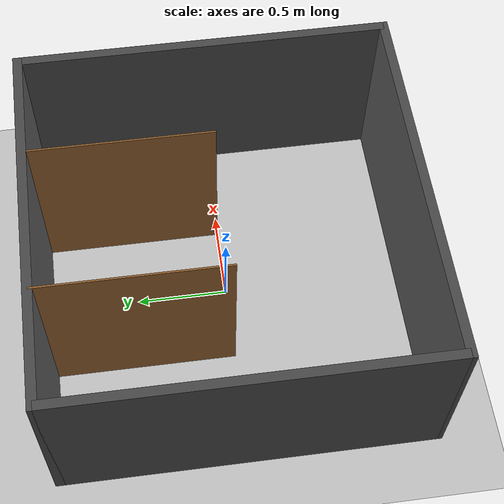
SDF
<?xml version="1.0"?>
<sdf version="1.6">
  <world name="two_isles_2m_world">
    <!-- Basic physics and plugins -->
    <physics type="ode">
      <real_time_update_rate>1000.0</real_time_update_rate>
      <max_step_size>0.001</max_step_size>
      <real_time_factor>1</real_time_factor>
    </physics>

    <plugin filename="gz-sim-physics-system" name="gz::sim::systems::Physics"/>
    <plugin filename="gz-sim-user-commands-system" name="gz::sim::systems::UserCommands"/>
    <plugin filename="gz-sim-scene-broadcaster-system" name="gz::sim::systems::SceneBroadcaster"/>
    <plugin filename="gz-sim-sensors-system" name="gz::sim::systems::Sensors">
      <render_engine>ogre2</render_engine>
    </plugin>

    <scene>
      <ambient>0.5 0.5 0.5 1</ambient>
      <background>0.8 0.8 0.8 1</background>
      <shadows>true</shadows>
    </scene>

    <gui fullscreen='0'>
      <camera name='user_camera'>
        <!-- Top-down view -->
        <pose>0 -2.2 5.0 0 1.35 0</pose>
        <view_controller>orbit</view_controller>
        <projection_type>perspective</projection_type>
      </camera>
    </gui>

    <!-- Ground plane and sun -->
    <include>
      <uri>https://fuel.gazebosim.org/1.0/OpenRobotics/models/Ground Plane</uri>
    </include>
    <include>
      <uri>https://fuel.gazebosim.org/1.0/OpenRobotics/models/Sun</uri>
    </include>

    <!-- Dimensions: Overall square 2m x 2m centered at (0,0). Wall thickness 0.05m. Height 1.0m. -->
    <!-- North wall (y = +1.0) -->
    <model name="wall_north">
      <static>true</static>
      <pose>0 1.0 0.5 0 0 0</pose>
      <link name="link">
        <collision name="collision">
          <geometry>
            <box>
              <size>2.05 0.05 1.0</size>
            </box>
          </geometry>
        </collision>
        <visual name="visual">
          <geometry>
            <box>
              <size>2.05 0.05 1.0</size>
            </box>
          </geometry>
          <material>
            <diffuse>0.3 0.3 0.3 1</diffuse>
          </material>
        </visual>
      </link>
    </model>

    <!-- South wall (y = -1.0) -->
    <model name="wall_south">
      <static>true</static>
      <pose>0 -1.0 0.5 0 0 0</pose>
      <link name="link">
        <collision name="collision">
          <geometry>
            <box>
              <size>2.05 0.05 1.0</size>
            </box>
          </geometry>
        </collision>
        <visual name="visual">
          <geometry>
            <box>
              <size>2.05 0.05 1.0</size>
            </box>
          </geometry>
          <material>
            <diffuse>0.3 0.3 0.3 1</diffuse>
          </material>
        </visual>
      </link>
    </model>

    <!-- East wall (x = +1.0) -->
    <model name="wall_east">
      <static>true</static>
      <pose>1.0 0 0.5 0 0 0</pose>
      <link name="link">
        <collision name="collision">
          <geometry>
            <box>
              <size>0.05 2.0 1.0</size>
            </box>
          </geometry>
        </collision>
        <visual name="visual">
          <geometry>
            <box>
              <size>0.05 2.0 1.0</size>
            </box>
          </geometry>
          <material>
            <diffuse>0.3 0.3 0.3 1</diffuse>
          </material>
        </visual>
      </link>
    </model>

    <!-- West wall (x = -1.0) -->
    <model name="wall_west">
      <static>true</static>
      <pose>-1.0 0 0.5 0 0 0</pose>
      <link name="link">
        <collision name="collision">
          <geometry>
            <box>
              <size>0.05 2.0 1.0</size>
            </box>
          </geometry>
        </collision>
        <visual name="visual">
          <geometry>
            <box>
              <size>0.05 2.0 1.0</size>
            </box>
          </geometry>
          <material>
            <diffuse>0.3 0.3 0.3 1</diffuse>
          </material>
        </visual>
      </link>
    </model>

    <!-- Two internal vertical aisles from the top: length 1.0m, width 0.01m -->
    <!-- Aisle 1 at x = -0.4, centered at y = +0.5 (spans from y=+1.0 down to y=0.0) -->
    <model name="aisle_1">
      <static>true</static>
      <pose>-0.4 0.5 0.5 0 0 0</pose>
      <link name="link">
        <collision name="collision">
          <geometry>
            <box>
              <size>0.01 1.0 1.0</size>
            </box>
          </geometry>
        </collision>
        <visual name="visual">
          <geometry>
            <box>
              <size>0.01 1.0 1.0</size>
            </box>
          </geometry>
          <material>
            <diffuse>0.6 0.4 0.2 1</diffuse>
          </material>
        </visual>
      </link>
    </model>

    <!-- Aisle 2 at x = +0.4, centered at y = +0.5 -->
    <model name="aisle_2">
      <static>true</static>
      <pose>0.4 0.5 0.5 0 0 0</pose>
      <link name="link">
        <collision name="collision">
          <geometry>
            <box>
              <size>0.01 1.0 1.0</size>
            </box>
          </geometry>
        </collision>
        <visual name="visual">
          <geometry>
            <box>
              <size>0.01 1.0 1.0</size>
            </box>
          </geometry>
          <material>
            <diffuse>0.6 0.4 0.2 1</diffuse>
          </material>
        </visual>
      </link>
    </model>

  </world>
</sdf>
